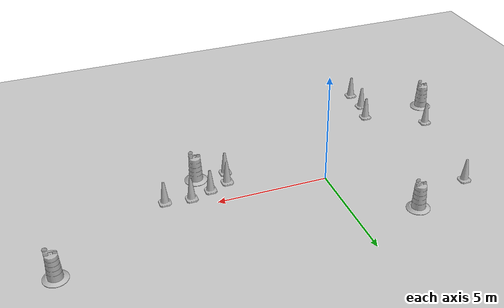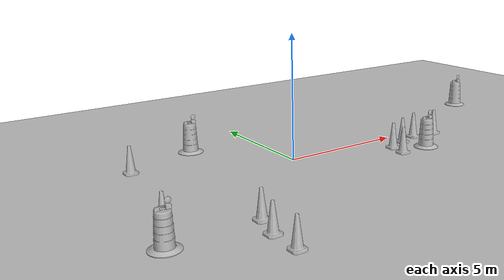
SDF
<sdf version="1.7">
 <world name="default">
  <light name="sun" type="directional">
   <pose>0 0 10 0 -0 0</pose>
   <diffuse>0.8 0.8 0.8 1</diffuse>
   <specular>0.2 0.2 0.2 1</specular>
   <attenuation>
    <range>1000</range>
    <constant>0.9</constant>
    <linear>0.01</linear>
    <quadratic>0.001</quadratic>
   </attenuation>
   <direction>-0.5 0.1 -0.9</direction>
   <spot><inner_angle>0</inner_angle><outer_angle>0</outer_angle><falloff>0</falloff></spot>
  </light>
  <model name="ground_plane">
   <static>1</static>
   <link name="link">
    <collision name="collision">
     <geometry><plane><normal>0 0 1</normal><size>100 100</size></plane></geometry>
     <surface>
      <contact><collide_bitmask>65535</collide_bitmask></contact>
      <friction><ode><mu>100</mu><mu2>50</mu2></ode></friction>
     </surface>
    </collision>
    <visual name="visual">
     <cast_shadows>0</cast_shadows>
     <geometry><plane><normal>0 0 1</normal><size>100 100</size></plane></geometry>
     <material>
      <script><uri>file://media/materials/scripts/gazebo.material</uri><name>Gazebo/Grey</name></script>
     </material>
    </visual>
   </link>
  </model>
  <gravity>0 0 -9.8</gravity>
  <magnetic_field>6e-06 2.3e-05 -4.2e-05</magnetic_field>
  <atmosphere type="adiabatic"/>
  <physics type="ode">
   <max_step_size>0.001</max_step_size>
   <real_time_factor>1</real_time_factor>
   <real_time_update_rate>1000</real_time_update_rate>
  </physics>
  <scene><ambient>0.4 0.4 0.4 1</ambient><background>0.7 0.7 0.7 1</background><shadows>1</shadows></scene>
  <spherical_coordinates>
   <surface_model>EARTH_WGS84</surface_model>
   <latitude_deg>0</latitude_deg>
   <longitude_deg>0</longitude_deg>
   <elevation>0</elevation>
   <heading_deg>0</heading_deg>
  </spherical_coordinates>
  <model name="Construction Barrel">
   <link name="link">
    <inertial>
     <pose>0 0 0.4 0 -0 0</pose>
     <mass>500</mass>
     <inertia><ixx>51.2096</ixx><iyy>51.2096</iyy><izz>25</izz><ixy>0</ixy><ixz>0</ixz><iyz>0</iyz></inertia>
    </inertial>
    <collision name="collision">
     <geometry><mesh><uri>model://construction_barrel/meshes/construction_barrel.dae</uri></mesh></geometry>
    </collision>
    <visual name="visual">
     <geometry><mesh><uri>model://construction_barrel/meshes/construction_barrel.dae</uri></mesh></geometry>
    </visual>
   </link>
   <pose>-2.756319 3.39223 0 0 0 -2.4e-05</pose>
  </model>
  <model name="Construction Barrel_0">
   <link name="link">
    <inertial>
     <pose>0 0 0.4 0 -0 0</pose>
     <mass>500</mass>
     <inertia><ixx>51.2096</ixx><iyy>51.2096</iyy><izz>25</izz><ixy>0</ixy><ixz>0</ixz><iyz>0</iyz></inertia>
    </inertial>
    <collision name="collision">
     <geometry><mesh><uri>model://construction_barrel/meshes/construction_barrel.dae</uri></mesh></geometry>
    </collision>
    <visual name="visual">
     <geometry><mesh><uri>model://construction_barrel/meshes/construction_barrel.dae</uri></mesh></geometry>
    </visual>
   </link>
   <pose>12.06257 2.37694 0 0 0 -2.2e-05</pose>
  </model>
  <model name="Construction Cone">
   <link name="link">
    <collision name="collision">
     <geometry>
      <mesh><scale>10 10 10</scale><uri>model://construction_cone/meshes/construction_cone.dae</uri></mesh>
     </geometry>
    </collision>
    <visual name="visual">
     <geometry>
      <mesh><scale>10 10 10</scale><uri>model://construction_cone/meshes/construction_cone.dae</uri></mesh>
     </geometry>
    </visual>
    <inertial>
     <inertia><ixx>1</ixx><ixy>0</ixy><ixz>0</ixz><iyy>1</iyy><iyz>0</iyz><izz>1</izz></inertia>
     <mass>1</mass>
    </inertial>
   </link>
   <pose>5.99904 -0.59793 -0 0 -0 0</pose>
  </model>
  <model name="Construction Cone_0">
   <link name="link">
    <collision name="collision">
     <geometry>
      <mesh><scale>10 10 10</scale><uri>model://construction_cone/meshes/construction_cone.dae</uri></mesh>
     </geometry>
    </collision>
    <visual name="visual">
     <geometry>
      <mesh><scale>10 10 10</scale><uri>model://construction_cone/meshes/construction_cone.dae</uri></mesh>
     </geometry>
    </visual>
    <inertial>
     <inertia><ixx>1</ixx><ixy>0</ixy><ixz>0</ixz><iyy>1</iyy><iyz>0</iyz><izz>1</izz></inertia>
     <mass>1</mass>
    </inertial>
   </link>
   <pose>5.06485 -0.88917 -0 0 -0 0</pose>
  </model>
  <model name="Construction Cone_1">
   <link name="link">
    <collision name="collision">
     <geometry>
      <mesh><scale>10 10 10</scale><uri>model://construction_cone/meshes/construction_cone.dae</uri></mesh>
     </geometry>
    </collision>
    <visual name="visual">
     <geometry>
      <mesh><scale>10 10 10</scale><uri>model://construction_cone/meshes/construction_cone.dae</uri></mesh>
     </geometry>
    </visual>
    <inertial>
     <inertia><ixx>1</ixx><ixy>0</ixy><ixz>0</ixz><iyy>1</iyy><iyz>0</iyz><izz>1</izz></inertia>
     <mass>1</mass>
    </inertial>
   </link>
   <pose>4.19807 -1.23547 -0 0 -0 0</pose>
  </model>
  <model name="Construction Cone_2">
   <link name="link">
    <collision name="collision">
     <geometry>
      <mesh><scale>10 10 10</scale><uri>model://construction_cone/meshes/construction_cone.dae</uri></mesh>
     </geometry>
    </collision>
    <visual name="visual">
     <geometry>
      <mesh><scale>10 10 10</scale><uri>model://construction_cone/meshes/construction_cone.dae</uri></mesh>
     </geometry>
    </visual>
    <inertial>
     <inertia><ixx>1</ixx><ixy>0</ixy><ixz>0</ixz><iyy>1</iyy><iyz>0</iyz><izz>1</izz></inertia>
     <mass>1</mass>
    </inertial>
   </link>
   <pose>-4.09724 -4.18232 -0 1e-06 -0 0</pose>
  </model>
  <model name="Construction Cone_3">
   <link name="link">
    <collision name="collision">
     <geometry>
      <mesh><scale>10 10 10</scale><uri>model://construction_cone/meshes/construction_cone.dae</uri></mesh>
     </geometry>
    </collision>
    <visual name="visual">
     <geometry>
      <mesh><scale>10 10 10</scale><uri>model://construction_cone/meshes/construction_cone.dae</uri></mesh>
     </geometry>
    </visual>
    <inertial>
     <inertia><ixx>1</ixx><ixy>0</ixy><ixz>0</ixz><iyy>1</iyy><iyz>0</iyz><izz>1</izz></inertia>
     <mass>1</mass>
    </inertial>
   </link>
   <pose>-5.69879 2.345038 -1e-05 0 -0 0</pose>
  </model>
  <model name="Construction Cone_4">
   <link name="link">
    <collision name="collision">
     <geometry>
      <mesh><scale>10 10 10</scale><uri>model://construction_cone/meshes/construction_cone.dae</uri></mesh>
     </geometry>
    </collision>
    <visual name="visual">
     <geometry>
      <mesh><scale>10 10 10</scale><uri>model://construction_cone/meshes/construction_cone.dae</uri></mesh>
     </geometry>
    </visual>
    <inertial>
     <inertia><ixx>1</ixx><ixy>0</ixy><ixz>0</ixz><iyy>1</iyy><iyz>0</iyz><izz>1</izz></inertia>
     <mass>1</mass>
    </inertial>
   </link>
   <pose>4.05887 -1.97199 -0 0 -1e-06 0</pose>
  </model>
  <model name="Construction Cone_5">
   <link name="link">
    <collision name="collision">
     <geometry>
      <mesh><scale>10 10 10</scale><uri>model://construction_cone/meshes/construction_cone.dae</uri></mesh>
     </geometry>
    </collision>
    <visual name="visual">
     <geometry>
      <mesh><scale>10 10 10</scale><uri>model://construction_cone/meshes/construction_cone.dae</uri></mesh>
     </geometry>
    </visual>
    <inertial>
     <inertia><ixx>1</ixx><ixy>0</ixy><ixz>0</ixz><iyy>1</iyy><iyz>0</iyz><izz>1</izz></inertia>
     <mass>1</mass>
    </inertial>
   </link>
   <pose>-4.38815 -5.2576 -0 0 -0 0</pose>
  </model>
  <model name="Construction Cone_6">
   <link name="link">
    <collision name="collision">
     <geometry>
      <mesh><scale>10 10 10</scale><uri>model://construction_cone/meshes/construction_cone.dae</uri></mesh>
     </geometry>
    </collision>
    <visual name="visual">
     <geometry>
      <mesh><scale>10 10 10</scale><uri>model://construction_cone/meshes/construction_cone.dae</uri></mesh>
     </geometry>
    </visual>
    <inertial>
     <inertia><ixx>1</ixx><ixy>0</ixy><ixz>0</ixz><iyy>1</iyy><iyz>0</iyz><izz>1</izz></inertia>
     <mass>1</mass>
    </inertial>
   </link>
   <pose>-4.39316 -6.49605 -0 0 -1e-06 0</pose>
  </model>
  <model name="Construction Cone_7">
   <link name="link">
    <collision name="collision">
     <geometry>
      <mesh><scale>10 10 10</scale><uri>model://construction_cone/meshes/construction_cone.dae</uri></mesh>
     </geometry>
    </collision>
    <visual name="visual">
     <geometry>
      <mesh><scale>10 10 10</scale><uri>model://construction_cone/meshes/construction_cone.dae</uri></mesh>
     </geometry>
    </visual>
    <inertial>
     <inertia><ixx>1</ixx><ixy>0</ixy><ixz>0</ixz><iyy>1</iyy><iyz>0</iyz><izz>1</izz></inertia>
     <mass>1</mass>
    </inertial>
   </link>
   <pose>7.13798 -0.72776 -0 0 -1e-06 0</pose>
  </model>
  <model name="Construction Cone_8">
   <link name="link">
    <collision name="collision">
     <geometry>
      <mesh><scale>10 10 10</scale><uri>model://construction_cone/meshes/construction_cone.dae</uri></mesh>
     </geometry>
    </collision>
    <visual name="visual">
     <geometry>
      <mesh><scale>10 10 10</scale><uri>model://construction_cone/meshes/construction_cone.dae</uri></mesh>
     </geometry>
    </visual>
    <inertial>
     <inertia><ixx>1</ixx><ixy>0</ixy><ixz>0</ixz><iyy>1</iyy><iyz>0</iyz><izz>1</izz></inertia>
     <mass>1</mass>
    </inertial>
   </link>
   <pose>-6.64786 -2.646522 -0 0 -1e-06 0</pose>
  </model>
  <model name="Construction Barrel_1">
   <link name="link">
    <inertial>
     <pose>0 0 0.4 0 -0 0</pose>
     <mass>500</mass>
     <inertia><ixx>51.2096</ixx><iyy>51.2096</iyy><izz>25</izz><ixy>0</ixy><ixz>0</ixz><iyz>0</iyz></inertia>
    </inertial>
    <collision name="collision">
     <geometry><mesh><uri>model://construction_barrel/meshes/construction_barrel.dae</uri></mesh></geometry>
    </collision>
    <visual name="visual">
     <geometry><mesh><uri>model://construction_barrel/meshes/construction_barrel.dae</uri></mesh></geometry>
    </visual>
   </link>
   <pose>-7.31082 -4.23709 -0 0 -0 -7e-06</pose>
  </model>
  <model name="Construction Barrel_2">
   <link name="link">
    <inertial>
     <pose>0 0 0.4 0 -0 0</pose>
     <mass>500</mass>
     <inertia><ixx>51.2096</ixx><iyy>51.2096</iyy><izz>25</izz><ixy>0</ixy><ixz>0</ixz><iyz>0</iyz></inertia>
    </inertial>
    <collision name="collision">
     <geometry><mesh><uri>model://construction_barrel/meshes/construction_barrel.dae</uri></mesh></geometry>
    </collision>
    <visual name="visual">
     <geometry><mesh><uri>model://construction_barrel/meshes/construction_barrel.dae</uri></mesh></geometry>
    </visual>
   </link>
   <pose>5.42763 -1.93728 -0 0 0 -4e-06</pose>
  </model>
 </world>
</sdf>
